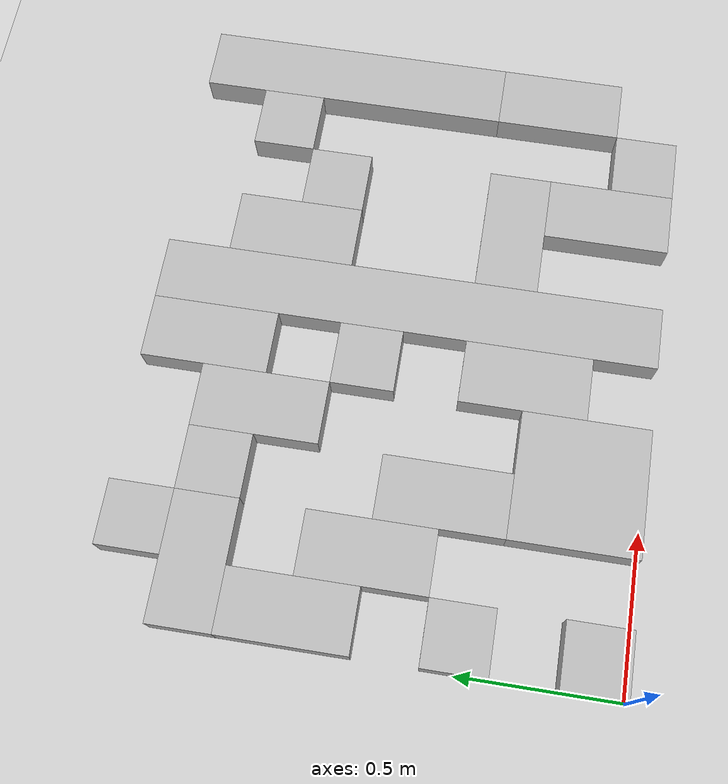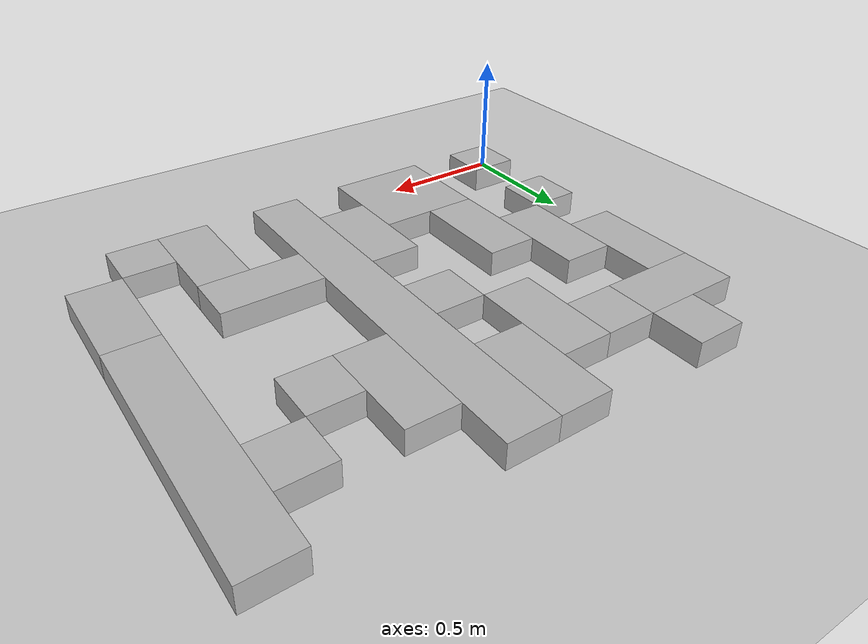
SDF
<?xml version="1.0" ?>
<sdf version="1.4">
	<world name="default">
		<scene>
			<shadows>false</shadows>
		</scene>
		<gui>
			<camera name="camera">
				<pose>3.0 0.0 1.0 0.0 0.3 3.14</pose>
			</camera>
		</gui>
		<physics type="ode">
			<gravity>0 0 -9.81</gravity>
			<real_time_update_rate>500</real_time_update_rate>
			<max_step_size>0.002</max_step_size>
			<ode>
				<solver>
					<type>quick</type>
					<iters>70</iters>
					<sor>1.2</sor>
				</solver>
				<constraints>
 					<cfm>0.0</cfm>
					<erp>0.2</erp>
					<contact_max_correcting_vel>100.0</contact_max_correcting_vel>
					<contact_surface_layer>0.001</contact_surface_layer>
				</constraints>
			</ode>
		</physics>
		<include>
			<uri>model://ground_plane</uri>
		</include>
		<include>
			<uri>model://sun</uri>
		</include>

		<model name="small_block1">
			<pose>0.1 0.1 0.05 0 0 0</pose>

			<static>true</static>
			<link name="link">
				<visual name="visual0">
					<geometry>
						<box>
							<size>0.2 0.2 0.1</size>
						</box>
					</geometry>
				</visual>
				<collision name="collision0">
					<geometry>
						<box>
							<size>0.2 0.2 0.1</size>
						</box>
					</geometry>
					<surface>
						<friction>
							<ode>
								<mu>100000</mu>
								<mu2>100000</mu2>
							</ode>
						</friction>
					</surface>
				</collision>
			</link>
		</model>

		<model name="small_block2">
			<pose>0.1 0.5 0.05 0 0 0</pose>

			<static>true</static>
			<link name="link">
				<visual name="visual0">
					<geometry>
						<box>
							<size>0.2 0.2 0.1</size>
						</box>
					</geometry>
				</visual>
				<collision name="collision0">
					<geometry>
						<box>
							<size>0.2 0.2 0.1</size>
						</box>
					</geometry>
					<surface>
						<friction>
							<ode>
								<mu>100000</mu>
								<mu2>100000</mu2>
							</ode>
						</friction>
					</surface>
				</collision>
			</link>
		</model>

		<model name="big_block1">
			<pose>0.1 1 0.05 0 0 0</pose>

			<static>true</static>
			<link name="link">
				<visual name="visual0">
					<geometry>
						<box>
							<size>0.2 0.4 0.1</size>
						</box>
					</geometry>
				</visual>
				<collision name="collision0">
					<geometry>
						<box>
							<size>0.2 0.4 0.1</size>
						</box>
					</geometry>
					<surface>
						<friction>
							<ode>
								<mu>100000</mu>
								<mu2>100000</mu2>
							</ode>
						</friction>
					</surface>
				</collision>
			</link>
		</model>

		<model name="big_block2">
			<pose>0.2 1.3 0.05 0 0 0</pose>

			<static>true</static>
			<link name="link">
				<visual name="visual0">
					<geometry>
						<box>
							<size>0.4 0.2 0.1</size>
						</box>
					</geometry>
				</visual>
				<collision name="collision0">
					<geometry>
						<box>
							<size>0.4 0.2 0.1</size>
						</box>
					</geometry>
					<surface>
						<friction>
							<ode>
								<mu>100000</mu>
								<mu2>100000</mu2>
							</ode>
						</friction>
					</surface>
				</collision>
			</link>
		</model>

		<model name="big_block3">
			<pose>0.3 0.8 0.05 0 0 0</pose>

			<static>true</static>
			<link name="link">
				<visual name="visual0">
					<geometry>
						<box>
							<size>0.2 0.4 0.1</size>
						</box>
					</geometry>
				</visual>
				<collision name="collision0">
					<geometry>
						<box>
							<size>0.2 0.4 0.1</size>
						</box>
					</geometry>
					<surface>
						<friction>
							<ode>
								<mu>100000</mu>
								<mu2>100000</mu2>
							</ode>
						</friction>
					</surface>
				</collision>
			</link>
		</model>

		<model name="small_block3">
			<pose>0.3 1.5 0.05 0 0 0</pose>

			<static>true</static>
			<link name="link">
				<visual name="visual0">
					<geometry>
						<box>
							<size>0.2 0.2 0.1</size>
						</box>
					</geometry>
				</visual>
				<collision name="collision0">
					<geometry>
						<box>
							<size>0.2 0.2 0.1</size>
						</box>
					</geometry>
					<surface>
						<friction>
							<ode>
								<mu>100000</mu>
								<mu2>100000</mu2>
							</ode>
						</friction>
					</surface>
				</collision>
			</link>
		</model>

		<model name="big_block4">
			<pose>0.6 0.2 0.05 0 0 0</pose>

			<static>true</static>
			<link name="link">
				<visual name="visual0">
					<geometry>
						<box>
							<size>0.4 0.4 0.1</size>
						</box>
					</geometry>
				</visual>
				<collision name="collision0">
					<geometry>
						<box>
							<size>0.4 0.4 0.1</size>
						</box>
					</geometry>
					<surface>
						<friction>
							<ode>
								<mu>100000</mu>
								<mu2>100000</mu2>
							</ode>
						</friction>
					</surface>
				</collision>
			</link>
		</model>

		<model name="big_block5">
			<pose>0.5 0.6 0.05 0 0 0</pose>

			<static>true</static>
			<link name="link">
				<visual name="visual0">
					<geometry>
						<box>
							<size>0.2 0.4 0.1</size>
						</box>
					</geometry>
				</visual>
				<collision name="collision0">
					<geometry>
						<box>
							<size>0.2 0.4 0.1</size>
						</box>
					</geometry>
					<surface>
						<friction>
							<ode>
								<mu>100000</mu>
								<mu2>100000</mu2>
							</ode>
						</friction>
					</surface>
				</collision>
			</link>
		</model>

		<model name="small_block3">
			<pose>0.5 1.3 0.05 0 0 0</pose>

			<static>true</static>
			<link name="link">
				<visual name="visual0">
					<geometry>
						<box>
							<size>0.2 0.2 0.1</size>
						</box>
					</geometry>
				</visual>
				<collision name="collision0">
					<geometry>
						<box>
							<size>0.2 0.2 0.1</size>
						</box>
					</geometry>
					<surface>
						<friction>
							<ode>
								<mu>100000</mu>
								<mu2>100000</mu2>
							</ode>
						</friction>
					</surface>
				</collision>
			</link>
		</model>

		<model name="big_block5">
			<pose>0.7 1.2 0.05 0 0 0</pose>

			<static>true</static>
			<link name="link">
				<visual name="visual0">
					<geometry>
						<box>
							<size>0.2 0.4 0.1</size>
						</box>
					</geometry>
				</visual>
				<collision name="collision0">
					<geometry>
						<box>
							<size>0.2 0.4 0.1</size>
						</box>
					</geometry>
					<surface>
						<friction>
							<ode>
								<mu>100000</mu>
								<mu2>100000</mu2>
							</ode>
						</friction>
					</surface>
				</collision>
			</link>
		</model>

		<model name="big_block5">
			<pose>0.9 1.4 0.05 0 0 0</pose>

			<static>true</static>
			<link name="link">
				<visual name="visual0">
					<geometry>
						<box>
							<size>0.2 0.4 0.1</size>
						</box>
					</geometry>
				</visual>
				<collision name="collision0">
					<geometry>
						<box>
							<size>0.2 0.4 0.1</size>
						</box>
					</geometry>
					<surface>
						<friction>
							<ode>
								<mu>100000</mu>
								<mu2>100000</mu2>
							</ode>
						</friction>
					</surface>
				</collision>
			</link>
		</model>

		<model name="big_block6">
			<pose>0.9 0.4 0.05 0 0 0</pose>

			<static>true</static>
			<link name="link">
				<visual name="visual0">
					<geometry>
						<box>
							<size>0.2 0.4 0.1</size>
						</box>
					</geometry>
				</visual>
				<collision name="collision0">
					<geometry>
						<box>
							<size>0.2 0.4 0.1</size>
						</box>
					</geometry>
					<surface>
						<friction>
							<ode>
								<mu>100000</mu>
								<mu2>100000</mu2>
							</ode>
						</friction>
					</surface>
				</collision>
			</link>
		</model>

		<model name="small_block3">
			<pose>0.9 0.9 0.05 0 0 0</pose>

			<static>true</static>
			<link name="link">
				<visual name="visual0">
					<geometry>
						<box>
							<size>0.2 0.2 0.1</size>
						</box>
					</geometry>
				</visual>
				<collision name="collision0">
					<geometry>
						<box>
							<size>0.2 0.2 0.1</size>
						</box>
					</geometry>
					<surface>
						<friction>
							<ode>
								<mu>100000</mu>
								<mu2>100000</mu2>
							</ode>
						</friction>
					</surface>
				</collision>
			</link>
		</model>

		<model name="big_block6">
			<pose>1.1 0.8 0.05 0 0 0</pose>

			<static>true</static>
			<link name="link">
				<visual name="visual0">
					<geometry>
						<box>
							<size>0.2 1.6 0.1</size>
						</box>
					</geometry>
				</visual>
				<collision name="collision0">
					<geometry>
						<box>
							<size>0.2 1.6 0.1</size>
						</box>
					</geometry>
					<surface>
						<friction>
							<ode>
								<mu>100000</mu>
								<mu2>100000</mu2>
							</ode>
						</friction>
					</surface>
				</collision>
			</link>
		</model>

		<model name="big_block6">
			<pose>1.3 1.2 0.05 0 0 0</pose>

			<static>true</static>
			<link name="link">
				<visual name="visual0">
					<geometry>
						<box>
							<size>0.2 0.4 0.1</size>
						</box>
					</geometry>
				</visual>
				<collision name="collision0">
					<geometry>
						<box>
							<size>0.2 0.4 0.1</size>
						</box>
					</geometry>
					<surface>
						<friction>
							<ode>
								<mu>100000</mu>
								<mu2>100000</mu2>
							</ode>
						</friction>
					</surface>
				</collision>
			</link>
		</model>

		<model name="big_block6">
			<pose>1.4 0.5 0.05 0 0 0</pose>

			<static>true</static>
			<link name="link">
				<visual name="visual0">
					<geometry>
						<box>
							<size>0.4 0.2 0.1</size>
						</box>
					</geometry>
				</visual>
				<collision name="collision0">
					<geometry>
						<box>
							<size>0.4 0.2 0.1</size>
						</box>
					</geometry>
					<surface>
						<friction>
							<ode>
								<mu>100000</mu>
								<mu2>100000</mu2>
							</ode>
						</friction>
					</surface>
				</collision>
			</link>
		</model>

		<model name="big_block6">
			<pose>1.5 0.2 0.05 0 0 0</pose>

			<static>true</static>
			<link name="link">
				<visual name="visual0">
					<geometry>
						<box>
							<size>0.2 0.4 0.1</size>
						</box>
					</geometry>
				</visual>
				<collision name="collision0">
					<geometry>
						<box>
							<size>0.2 0.4 0.1</size>
						</box>
					</geometry>
					<surface>
						<friction>
							<ode>
								<mu>100000</mu>
								<mu2>100000</mu2>
							</ode>
						</friction>
					</surface>
				</collision>
			</link>
		</model>

		<model name="small_block3">
			<pose>1.5 1.1 0.05 0 0 0</pose>

			<static>true</static>
			<link name="link">
				<visual name="visual0">
					<geometry>
						<box>
							<size>0.2 0.2 0.1</size>
						</box>
					</geometry>
				</visual>
				<collision name="collision0">
					<geometry>
						<box>
							<size>0.2 0.2 0.1</size>
						</box>
					</geometry>
					<surface>
						<friction>
							<ode>
								<mu>100000</mu>
								<mu2>100000</mu2>
							</ode>
						</friction>
					</surface>
				</collision>
			</link>
		</model>

		<model name="small_block3">
			<pose>1.7 0.1 0.05 0 0 0</pose>

			<static>true</static>
			<link name="link">
				<visual name="visual0">
					<geometry>
						<box>
							<size>0.2 0.2 0.1</size>
						</box>
					</geometry>
				</visual>
				<collision name="collision0">
					<geometry>
						<box>
							<size>0.2 0.2 0.1</size>
						</box>
					</geometry>
					<surface>
						<friction>
							<ode>
								<mu>100000</mu>
								<mu2>100000</mu2>
							</ode>
						</friction>
					</surface>
				</collision>
			</link>
		</model>

		<model name="small_block3">
			<pose>1.7 1.3 0.05 0 0 0</pose>

			<static>true</static>
			<link name="link">
				<visual name="visual0">
					<geometry>
						<box>
							<size>0.2 0.2 0.1</size>
						</box>
					</geometry>
				</visual>
				<collision name="collision0">
					<geometry>
						<box>
							<size>0.2 0.2 0.1</size>
						</box>
					</geometry>
					<surface>
						<friction>
							<ode>
								<mu>100000</mu>
								<mu2>100000</mu2>
							</ode>
						</friction>
					</surface>
				</collision>
			</link>
		</model>

		<model name="big_block6">
			<pose>1.9 0.4 0.05 0 0 0</pose>

			<static>true</static>
			<link name="link">
				<visual name="visual0">
					<geometry>
						<box>
							<size>0.2 0.4 0.1</size>
						</box>
					</geometry>
				</visual>
				<collision name="collision0">
					<geometry>
						<box>
							<size>0.2 0.4 0.1</size>
						</box>
					</geometry>
					<surface>
						<friction>
							<ode>
								<mu>100000</mu>
								<mu2>100000</mu2>
							</ode>
						</friction>
					</surface>
				</collision>
			</link>
		</model>

		<model name="big_block6">
			<pose>1.9 1.1 0.05 0 0 0</pose>

			<static>true</static>
			<link name="link">
				<visual name="visual0">
					<geometry>
						<box>
							<size>0.2 1.0 0.1</size>
						</box>
					</geometry>
				</visual>
				<collision name="collision0">
					<geometry>
						<box>
							<size>0.2 1.0 0.1</size>
						</box>
					</geometry>
					<surface>
						<friction>
							<ode>
								<mu>100000</mu>
								<mu2>100000</mu2>
							</ode>
						</friction>
					</surface>
				</collision>
			</link>
		</model>

	</world>
</sdf>
